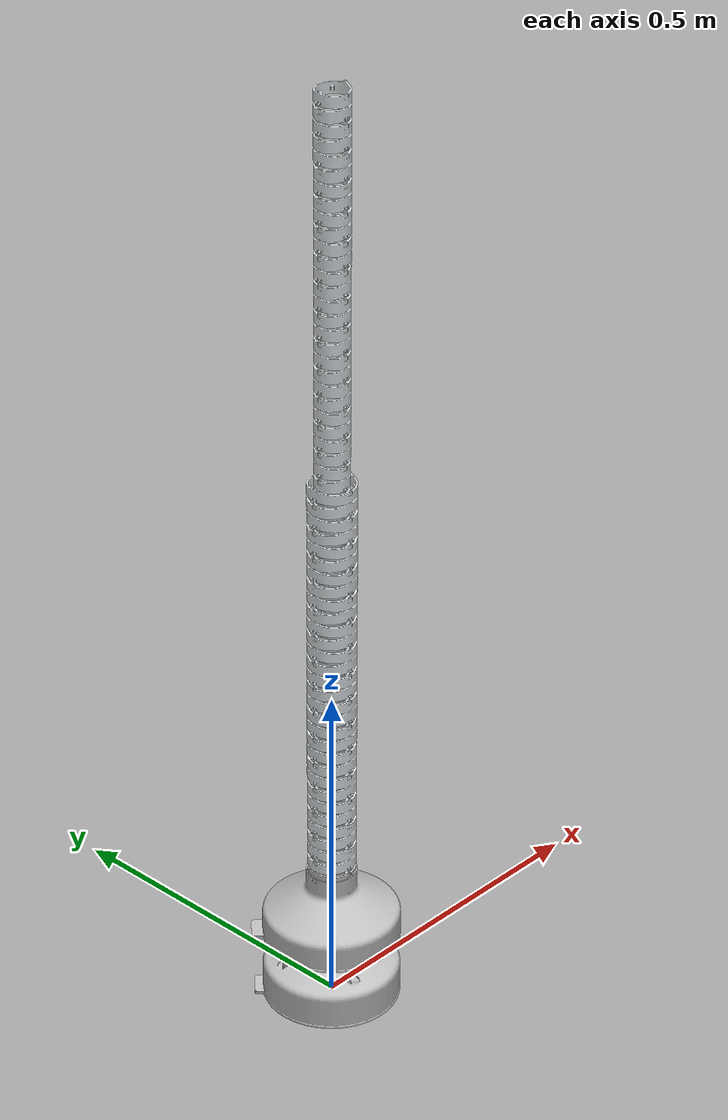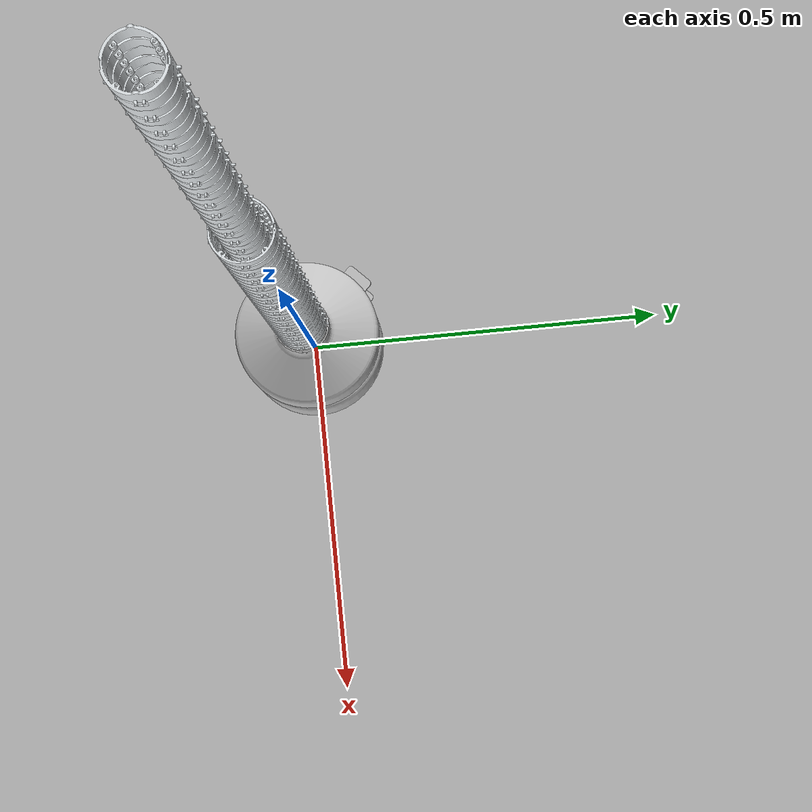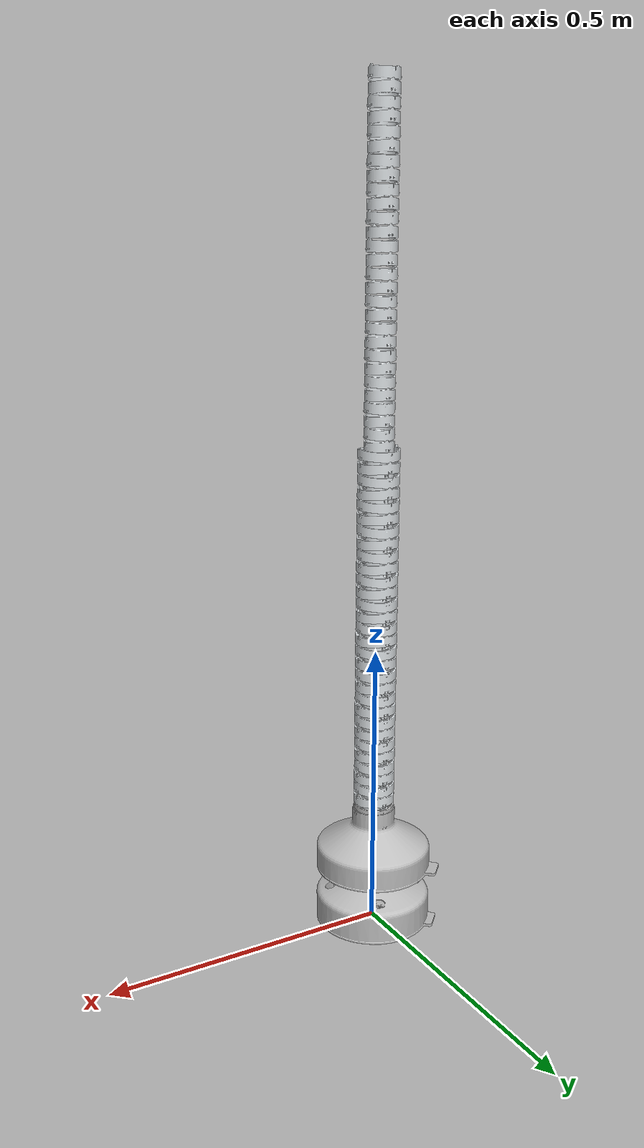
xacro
<?xml version="1.0"?>
<robot name="snake_robot" xmlns:xacro="http://ros.org/wiki/xacro">
  <xacro:include filename="$(find snake_robot1)/urdf/snake_robot1.xacro" />
  <xacro:include filename="$(find snake_robot2)/urdf/snake_robot2.xacro" />

  <link name="base_link" />
  <xacro:snake_robot1 parent="base_link" name="snake_robot1" base_joint_type="prismatic">
    <origin xyz="0 0 0.1" rpy="0 0 0"/>
  </xacro:snake_robot1>

  <xacro:snake_robot2 parent="base_link" name="snake_robot2" base_joint_type="prismatic">
    <origin xyz="0 0 0" rpy="0 0 0"/>
  </xacro:snake_robot2>

</robot>

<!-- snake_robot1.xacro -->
<robot name="snake_robot1" xmlns:xacro="http://ros.org/wiki/xacro">
  <xacro:include filename="$(find snake_robot1)/urdf/base_rail1.xacro" />

  <xacro:macro name="snake_robot1" params="parent *origin name:=snake_robot1 base_joint_type:=prismatic">

    <xacro:base1 parent="${parent}" name="base1" base_joint_type="${base_joint_type}">
      <xacro:insert_block name="origin" />
    </xacro:base1>

    <xacro:rail1 parent="base1_link" name="rail1_1">
      <origin xyz="0 0 0.1235" rpy="0 0 0"/>
    </xacro:rail1>

    <xacro:rail1 parent="rail1_1_link5" name="rail1_2" >
      <origin xyz="0 0 0.021" rpy="0 0 1.57"/>
    </xacro:rail1>

    <xacro:rail1 parent="rail1_2_link5" name="rail1_3" >
      <origin xyz="0 0 0.021" rpy="0 0 1.57"/>
    </xacro:rail1>

    <xacro:rail1 parent="rail1_3_link5" name="rail1_4" >
      <origin xyz="0 0 0.021" rpy="0 0 1.57"/>
    </xacro:rail1>

    <xacro:rail1 parent="rail1_4_link5" name="rail1_5" >
      <origin xyz="0 0 0.021" rpy="0 0 1.57"/>
    </xacro:rail1>

    <xacro:rail1 parent="rail1_5_link5" name="rail1_6" >
      <origin xyz="0 0 0.021" rpy="0 0 1.57"/>
    </xacro:rail1>
  </xacro:macro>

</robot>

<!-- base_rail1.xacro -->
<robot xmlns:xacro="http://www.ros.org/wiki/xacro" name="base_rail1">
    <xacro:macro name="base1" params="parent *origin name:=base base_joint_type:=prismatic">
        <link
            name="${name}_link">
            <visual>
            <origin
                xyz="0 0 0"
                rpy="0 0 0" />
            <geometry>
                <mesh
                filename="package://snake_robot1/meshes/base_link.STL" />
            </geometry>
            <material
                name="">
                <color
                rgba="0.75294 0.75294 0.75294 1" />
            </material>
            </visual>
            <collision>
            <origin
                xyz="0 0 0"
                rpy="0 0 0" />
            <geometry>
                <mesh
                filename="package://snake_robot1/meshes/base_link.STL" />
            </geometry>
            </collision>
        </link>
        <joint
        name="${name}_joint"
        type="${base_joint_type}">
        <xacro:insert_block name="origin" />
        <parent
            link="${parent}" />
        <child
            link="${name}_link" />
        <axis
            xyz="0 0 1" />
        <limit
        lower="-0.5"
        upper="0.5"
        effort="0"
        velocity="0" />
        </joint>
    </xacro:macro>

    <xacro:macro name="rail1" params="parent *origin name:=rail">
        <link
        name="${name}_link1">
        <inertial>
        <origin
            xyz="7.2882E-09 3.4329E-09 0.010539"
            rpy="0 0 0" />
        <mass
            value="0.024744" />
        <inertia
            ixx="1.4926E-05"
            ixy="-1.6133E-09"
            ixz="2.3902E-13"
            iyy="1.4062E-05"
            iyz="-9.0592E-13"
            izz="2.7906E-05" />
        </inertial>
        <visual>
        <origin
            xyz="0 0 0"
            rpy="0 0 0" />
        <geometry>
            <mesh
            filename="package://snake_robot1/meshes/link1.STL" />
        </geometry>
        <material
            name="">
            <color
            rgba="0.89804 0.91765 0.92941 1" />
        </material>
        </visual>
        <collision>
        <origin
            xyz="0 0 0"
            rpy="0 0 0" />
        <geometry>
            <mesh
            filename="package://snake_robot1/meshes/link1.STL" />
        </geometry>
        </collision>
    </link>
    <joint
        name="${name}_joint1"
        type="revolute">
        <xacro:insert_block name="origin" />
        <parent
        link="${parent}" />
        <child
        link="${name}_link1" />
        <axis
        xyz="-1 0 0" />
        <limit
        lower="-0.17"
        upper="0.17"
        effort="0"
        velocity="0" />
    </joint>
    <link
        name="${name}_link2">
        <inertial>
        <origin
            xyz="-3.433E-09 7.2882E-09 0.010539"
            rpy="0 0 0" />
        <mass
            value="0.024744" />
        <inertia
            ixx="1.4062E-05"
            ixy="1.6133E-09"
            ixz="9.0592E-13"
            iyy="1.4926E-05"
            iyz="2.3902E-13"
            izz="2.7906E-05" />
        </inertial>
        <visual>
        <origin
            xyz="0 0 0"
            rpy="0 0 0" />
        <geometry>
            <mesh
            filename="package://snake_robot1/meshes/link2.STL" />
        </geometry>
        <material
            name="">
            <color
            rgba="0.89804 0.91765 0.92941 1" />
        </material>
        </visual>
        <collision>
        <origin
            xyz="0 0 0"
            rpy="0 0 0" />
        <geometry>
            <mesh
            filename="package://snake_robot1/meshes/link2.STL" />
        </geometry>
        </collision>
    </link>
    <joint
        name="${name}_joint2"
        type="revolute">
        <origin
        xyz="0 0 0.021"
        rpy="0 0 0" />
        <parent
        link="${name}_link1" />
        <child
        link="${name}_link2" />
        <axis
        xyz="0 -1 0" />
        <limit
        lower="-0.17"
        upper="0.17"
        effort="0"
        velocity="0" />
    </joint>
    <link
        name="${name}_link3">
        <inertial>
        <origin
            xyz="7.2882E-09 3.4329E-09 0.010539"
            rpy="0 0 0" />
        <mass
            value="0.024744" />
        <inertia
            ixx="1.4926E-05"
            ixy="-1.6133E-09"
            ixz="2.3902E-13"
            iyy="1.4062E-05"
            iyz="-9.0592E-13"
            izz="2.7906E-05" />
        </inertial>
        <visual>
        <origin
            xyz="0 0 0"
            rpy="0 0 0" />
        <geometry>
            <mesh
            filename="package://snake_robot1/meshes/link3.STL" />
        </geometry>
        <material
            name="">
            <color
            rgba="0.89804 0.91765 0.92941 1" />
        </material>
        </visual>
        <collision>
        <origin
            xyz="0 0 0"
            rpy="0 0 0" />
        <geometry>
            <mesh
            filename="package://snake_robot1/meshes/link3.STL" />
        </geometry>
        </collision>
    </link>
    <joint
        name="${name}_joint3"
        type="revolute">
        <origin
        xyz="0 0 0.021"
        rpy="0 0 0" />
        <parent
        link="${name}_link2" />
        <child
        link="${name}_link3" />
        <axis
        xyz="1 0 0" />
        <limit
        lower="-0.17"
        upper="0.17"
        effort="0"
        velocity="0" />
    </joint>
    <link
        name="${name}_link4">
        <inertial>
        <origin
            xyz="-3.433E-09 7.2882E-09 0.010539"
            rpy="0 0 0" />
        <mass
            value="0.024744" />
        <inertia
            ixx="1.4062E-05"
            ixy="1.6133E-09"
            ixz="9.0592E-13"
            iyy="1.4926E-05"
            iyz="2.3902E-13"
            izz="2.7906E-05" />
        </inertial>
        <visual>
        <origin
            xyz="0 0 0"
            rpy="0 0 0" />
        <geometry>
            <mesh
            filename="package://snake_robot1/meshes/link4.STL" />
        </geometry>
        <material
            name="">
            <color
            rgba="0.89804 0.91765 0.92941 1" />
        </material>
        </visual>
        <collision>
        <origin
            xyz="0 0 0"
            rpy="0 0 0" />
        <geometry>
            <mesh
            filename="package://snake_robot1/meshes/link4.STL" />
        </geometry>
        </collision>
    </link>
    <joint
        name="${name}_joint4"
        type="revolute">
        <origin
        xyz="0 0 0.021"
        rpy="0 0 0" />
        <parent
        link="${name}_link3" />
        <child
        link="${name}_link4" />
        <axis
        xyz="0 -1 0" />
        <limit
        lower="-0.17"
        upper="0.17"
        effort="0"
        velocity="0" />
    </joint>
    <link
        name="${name}_link5">
        <inertial>
        <origin
            xyz="7.2882E-09 3.4329E-09 0.010539"
            rpy="0 0 0" />
        <mass
            value="0.024744" />
        <inertia
            ixx="1.4926E-05"
            ixy="-1.6133E-09"
            ixz="2.3902E-13"
            iyy="1.4062E-05"
            iyz="-9.0592E-13"
            izz="2.7906E-05" />
        </inertial>
        <visual>
        <origin
            xyz="0 0 0"
            rpy="0 0 0" />
        <geometry>
            <mesh
            filename="package://snake_robot1/meshes/link5.STL" />
        </geometry>
        <material
            name="">
            <color
            rgba="0.89804 0.91765 0.92941 1" />
        </material>
        </visual>
        <collision>
        <origin
            xyz="0 0 0"
            rpy="0 0 0" />
        <geometry>
            <mesh
            filename="package://snake_robot1/meshes/link5.STL" />
        </geometry>
        </collision>
    </link>
    <joint
        name="${name}_joint5"
        type="revolute">
        <origin
        xyz="0 0 0.021"
        rpy="0 0 0" />
        <parent
        link="${name}_link4" />
        <child
        link="${name}_link5" />
        <axis
        xyz="1 0 0" />
        <limit
        lower="-0.17"
        upper="0.17"
        effort="0"
        velocity="0" />
        </joint>
    </xacro:macro>
</robot>

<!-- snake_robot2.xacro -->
<robot name="snake_robot2" xmlns:xacro="http://ros.org/wiki/xacro">
  <xacro:include filename="$(find snake_robot2)/urdf/base_rail2.xacro" />

  <xacro:macro name="snake_robot2" params="parent *origin name:=snake_robot2 base_joint_type:=prismatic">

    <xacro:base2 parent="${parent}" name="base2" base_joint_type="${base_joint_type}">
      <xacro:insert_block name="origin" />
    </xacro:base2>

    <xacro:rail2 parent="base2_link" name="rail2_1" >
      <origin xyz="0 0 0.1735" rpy="0 0 0"/>
    </xacro:rail2>

    <xacro:rail2 parent="rail2_1_link5" name="rail2_2" >
      <origin xyz="0 0 0.021" rpy="0 0 1.57"/>
    </xacro:rail2>

    <xacro:rail2 parent="rail2_2_link5" name="rail2_3" >
      <origin xyz="0 0 0.021" rpy="0 0 1.57"/>
    </xacro:rail2>

    <xacro:rail2 parent="rail2_3_link5" name="rail2_4" >
      <origin xyz="0 0 0.021" rpy="0 0 1.57"/>
    </xacro:rail2>

    <xacro:rail2 parent="rail2_4_link5" name="rail2_5" >
      <origin xyz="0 0 0.021" rpy="0 0 1.57"/>
    </xacro:rail2>

    <xacro:rail2 parent="rail2_5_link5" name="rail2_6" >
      <origin xyz="0 0 0.021" rpy="0 0 1.57"/>
    </xacro:rail2>

    <xacro:rail2 parent="rail2_6_link5" name="rail2_7" >
      <origin xyz="0 0 0.021" rpy="0 0 1.57"/>
    </xacro:rail2>

    <xacro:rail2 parent="rail2_7_link5" name="rail2_8" >
      <origin xyz="0 0 0.021" rpy="0 0 1.57"/>
    </xacro:rail2>

    <xacro:rail2 parent="rail2_8_link5" name="rail2_9" >
      <origin xyz="0 0 0.021" rpy="0 0 1.57"/>
    </xacro:rail2>

    <xacro:rail2 parent="rail2_9_link5" name="rail2_10" >
      <origin xyz="0 0 0.021" rpy="0 0 1.57"/>
    </xacro:rail2>

    <xacro:rail2 parent="rail2_10_link5" name="rail2_11" >
      <origin xyz="0 0 0.021" rpy="0 0 1.57"/>
    </xacro:rail2>

    <xacro:rail2 parent="rail2_11_link5" name="rail2_12" >
      <origin xyz="0 0 0.021" rpy="0 0 1.57"/>
    </xacro:rail2>
  </xacro:macro>

</robot>

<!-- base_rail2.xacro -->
<robot xmlns:xacro="http://www.ros.org/wiki/xacro" name="base_rail2">
  <xacro:macro name="base2" params="parent *origin name:=base base_joint_type:=prismatic">
    <link
      name="${name}_link">
      <visual>
        <origin
          xyz="0 0 0"
          rpy="0 0 0" />
        <geometry>
          <mesh
            filename="package://snake_robot2/meshes/base_link.STL" />
        </geometry>
        <material
          name="">
          <color
            rgba="0.75294 0.75294 0.75294 1" />
        </material>
      </visual>
      <collision>
        <origin
          xyz="0 0 0"
          rpy="0 0 0" />
        <geometry>
          <mesh
            filename="package://snake_robot2/meshes/base_link.STL" />
        </geometry>
      </collision>
    </link>
    <joint
      name="${name}_joint"
      type="${base_joint_type}">
      <xacro:insert_block name="origin" />
      <parent
        link="${parent}" />
      <child
        link="${name}_link" />
      <axis
        xyz="0 0 1" />
      <limit
      lower="-0.5"
      upper="0.5"
      effort="0"
      velocity="0" />
    </joint>
  </xacro:macro>

  <xacro:macro name="rail2" params="parent *origin name:=rail">
    <link
      name="${name}_link1">
      <inertial>
        <origin
          xyz="5.5313E-09 3.6738E-09 0.010533"
          rpy="0 0 0" />
        <mass
          value="0.018285" />
        <inertia
          ixx="5.7939E-06"
          ixy="-9.0258E-10"
          ixz="-4.854E-14"
          iyy="5.3329E-06"
          iyz="-9.0945E-13"
          izz="1.0221E-05" />
      </inertial>
      <visual>
        <origin
          xyz="0 0 0"
          rpy="0 0 0" />
        <geometry>
          <mesh
            filename="package://snake_robot2/meshes/link1.STL" />
        </geometry>
        <material
          name="">
          <color
            rgba="0.89804 0.91765 0.92941 1" />
        </material>
      </visual>
      <collision>
        <origin
          xyz="0 0 0"
          rpy="0 0 0" />
        <geometry>
          <mesh
            filename="package://snake_robot2/meshes/link1.STL" />
        </geometry>
      </collision>
    </link>
    <joint
      name="${name}_joint1"
      type="revolute">
      <xacro:insert_block name="origin" />
      <parent
        link="${parent}" />
      <child
        link="${name}_link1" />
      <axis
        xyz="1 0 0" />
      <limit
        lower="-0.17"
        upper="0.17"
        effort="0"
        velocity="0" />
    </joint>
    <link
      name="${name}_link2">
      <inertial>
        <origin
          xyz="-3.6738E-09 5.5318E-09 0.010533"
          rpy="0 0 0" />
        <mass
          value="0.018285" />
        <inertia
          ixx="5.3329E-06"
          ixy="9.0258E-10"
          ixz="9.0945E-13"
          iyy="5.7939E-06"
          iyz="-4.854E-14"
          izz="1.0221E-05" />
      </inertial>
      <visual>
        <origin
          xyz="0 0 0"
          rpy="0 0 0" />
        <geometry>
          <mesh
            filename="package://snake_robot2/meshes/link2.STL" />
        </geometry>
        <material
          name="">
          <color
            rgba="0.89804 0.91765 0.92941 1" />
        </material>
      </visual>
      <collision>
        <origin
          xyz="0 0 0"
          rpy="0 0 0" />
        <geometry>
          <mesh
            filename="package://snake_robot2/meshes/link2.STL" />
        </geometry>
      </collision>
    </link>
    <joint
      name="${name}_joint2"
      type="revolute">
      <origin
        xyz="0 0 0.021"
        rpy="0 0 0" />
      <parent
        link="${name}_link1" />
      <child
        link="${name}_link2" />
      <axis
        xyz="0 -1 0" />
      <limit
        lower="-0.17"
        upper="0.17"
        effort="0"
        velocity="0" />
    </joint>
    <link
      name="${name}_link3">
      <inertial>
        <origin
          xyz="5.5313E-09 3.6738E-09 0.010533"
          rpy="0 0 0" />
        <mass
          value="0.018285" />
        <inertia
          ixx="5.7939E-06"
          ixy="-9.0258E-10"
          ixz="-4.854E-14"
          iyy="5.3329E-06"
          iyz="-9.0945E-13"
          izz="1.0221E-05" />
      </inertial>
      <visual>
        <origin
          xyz="0 0 0"
          rpy="0 0 0" />
        <geometry>
          <mesh
            filename="package://snake_robot2/meshes/link3.STL" />
        </geometry>
        <material
          name="">
          <color
            rgba="0.89804 0.91765 0.92941 1" />
        </material>
      </visual>
      <collision>
        <origin
          xyz="0 0 0"
          rpy="0 0 0" />
        <geometry>
          <mesh
            filename="package://snake_robot2/meshes/link3.STL" />
        </geometry>
      </collision>
    </link>
    <joint
      name="${name}_joint3"
      type="revolute">
      <origin
        xyz="0 0 0.021"
        rpy="0 0 0" />
      <parent
        link="${name}_link2" />
      <child
        link="${name}_link3" />
      <axis
        xyz="1 0 0" />
      <limit
        lower="-0.17"
        upper="0.17"
        effort="0"
        velocity="0" />
    </joint>
    <link
      name="${name}_link4">
      <inertial>
        <origin
          xyz="-3.6738E-09 5.5318E-09 0.010533"
          rpy="0 0 0" />
        <mass
          value="0.018285" />
        <inertia
          ixx="5.3329E-06"
          ixy="9.0258E-10"
          ixz="9.0945E-13"
          iyy="5.7939E-06"
          iyz="-4.854E-14"
          izz="1.0221E-05" />
      </inertial>
      <visual>
        <origin
          xyz="0 0 0"
          rpy="0 0 0" />
        <geometry>
          <mesh
            filename="package://snake_robot2/meshes/link4.STL" />
        </geometry>
        <material
          name="">
          <color
            rgba="0.89804 0.91765 0.92941 1" />
        </material>
      </visual>
      <collision>
        <origin
          xyz="0 0 0"
          rpy="0 0 0" />
        <geometry>
          <mesh
            filename="package://snake_robot2/meshes/link4.STL" />
        </geometry>
      </collision>
    </link>
    <joint
      name="${name}_joint4"
      type="revolute">
      <origin
        xyz="0 0 0.021"
        rpy="0 0 0" />
      <parent
        link="${name}_link3" />
      <child
        link="${name}_link4" />
      <axis
        xyz="0 -1 0" />
      <limit
        lower="-0.17"
        upper="0.17"
        effort="0"
        velocity="0" />
    </joint>
    <link
      name="${name}_link5">
      <inertial>
        <origin
          xyz="5.5313E-09 3.6738E-09 0.010533"
          rpy="0 0 0" />
        <mass
          value="0.018285" />
        <inertia
          ixx="5.7939E-06"
          ixy="-9.0258E-10"
          ixz="-4.854E-14"
          iyy="5.3329E-06"
          iyz="-9.0945E-13"
          izz="1.0221E-05" />
      </inertial>
      <visual>
        <origin
          xyz="0 0 0"
          rpy="0 0 0" />
        <geometry>
          <mesh
            filename="package://snake_robot2/meshes/link5.STL" />
        </geometry>
        <material
          name="">
          <color
            rgba="0.89804 0.91765 0.92941 1" />
        </material>
      </visual>
      <collision>
        <origin
          xyz="0 0 0"
          rpy="0 0 0" />
        <geometry>
          <mesh
            filename="package://snake_robot2/meshes/link5.STL" />
        </geometry>
      </collision>
    </link>
    <joint
      name="${name}_joint5"
      type="revolute">
      <origin
        xyz="0 0 0.021"
        rpy="0 0 0" />
      <parent
        link="${name}_link4" />
      <child
        link="${name}_link5" />
      <axis
        xyz="1 0 0" />
      <limit
        lower="-0.17"
        upper="0.17"
        effort="0"
        velocity="0" />
    </joint>
  </xacro:macro>
</robot>
